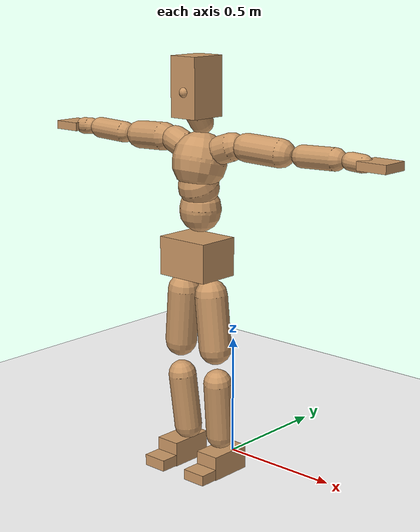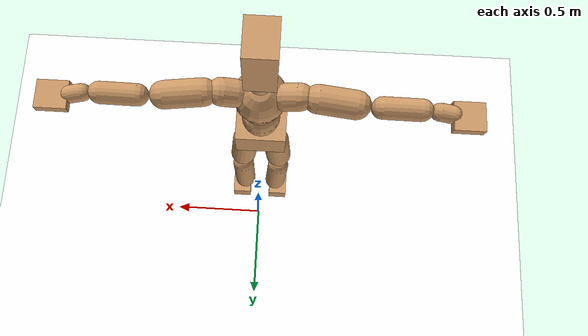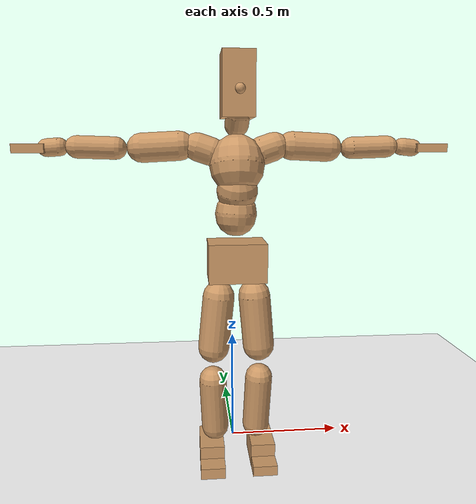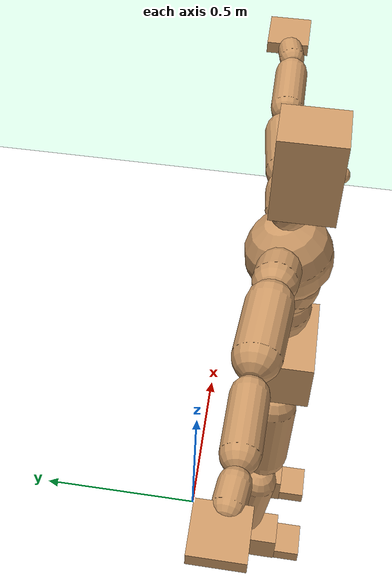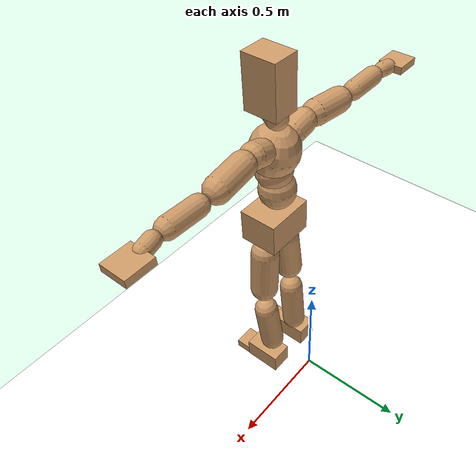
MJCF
<mujoco model="humanoid">
  <option integrator="implicitfast" />

  <visual>
    <global offwidth="1280" offheight="960" />
    <headlight active="1" ambient="0.34 0.34 0.34" diffuse="0.5 0.5 0.5" />
  </visual>

  <default>
    <joint damping="2" stiffness="2" armature="0.01" limited="true" solimplimit="0 .99 .01" />
    <geom condim="1" friction="0.7 0.005 0.0001" solimp=".99 .99 .003" solref="0.015 1" margin="0.001" rgba="0.8 0.6 .4 1" />
    <default class="smplcontact">
      <geom condim="3" friction="1. 0.005 0.0001" solref="0.015 1" solimp="0.98 0.98 0.001" priority="1" />
    </default>
    <default class="stiff_medium">
      <joint stiffness="10" />
    </default>
    <default class="stiff_medium_higher">
      <joint stiffness="50" />
    </default>
    <default class="stiff_high">
      <joint stiffness="100" />
    </default>
  </default>

  <asset>
    <texture type="skybox" builtin="gradient" rgb1="0.99 0.99 0.99" rgb2="0.608 0.828 0.892" width="100" />
    <texture builtin="flat" height="1278" mark="cross" markrgb="1 1 1" name="texgeom" random="0.01" rgb1="0.8 0.6 0.4" rgb2="0.8 0.6 0.4" type="cube" width="127" />
    <texture name="texplane" type="2d" builtin="checker" markrgb="1 1 1" rgb1="0.756 0.772 0.76" rgb2="0.6 0.6 0.6" width="100" height="100" />
    <material name="MatPlane" reflectance="0.5" texture="texplane" texrepeat="1 1" texuniform="true" />
    <material name="geom" texture="texgeom" texuniform="true" />
  </asset>

  <worldbody>
    <light name="tracking_light" pos="0 0 7" dir="0 0 -1" directional="true" cutoff="100" exponent="1" diffuse="1 1 1" specular="0.1 0.1 0.1" mode="trackcom" />
    <camera name="back" pos="0 3 2.4" xyaxes="-1 0 0 0 -1 2" mode="trackcom" />
    <camera name="side" pos="-3 0 2.4" xyaxes="0 -1 0 1 0 2" mode="trackcom" />
    <camera name="front_side" pos="-2.8 -2.8 0.8" xyaxes="0.5 -0.5 0 0.1 0.1 1" mode="trackcom" />
    <geom condim="3" name="floor" pos="0 0 0" rgba="1 1 1 1" size="100 100 .2" type="plane" material="MatPlane" />
    <body name="Pelvis" pos="-0.0018 -0.2233 0.906353" euler="90 0 0">
      <site name="Pelvis" size="0.01" />
      <freejoint name="Pelvis" />
      <geom type="box" pos="-0.0000 -0.0121 -0.0055" size="0.114917 0.077615 0.089225" quat="1.0000 0.0000 0.0000 0.0000" density="3165.830099" name="Pelvis" />
      <body name="L_Hip" pos="0.0668938 -0.0879725 -0.006545">
        <joint name="L_Hip_x" type="hinge" pos="0 0 0" axis="1 0 0" stiffness="10.822778777777778" range="-160.0 22.92" class="stiff_medium" damping="16.036984613900394" armature="0.010561464062139887"/>
        <joint name="L_Hip_y" type="hinge" pos="0 0 0" axis="0 1 0" stiffness="10.84281588888889" range="-70.0 70.0" class="stiff_medium" damping="11.339463882620159" armature="0.011858860508459997"/>
        <joint name="L_Hip_z" type="hinge" pos="0 0 0" axis="0 0 1" stiffness="10.839000333333333" range="-28.65 90.0" class="stiff_medium" damping="10.698345346330164" armature="0.010559515603792393"/>
        <geom type="capsule" density="2040.816327" fromto="0.00664125 -0.0721875 -0.00086625 0.0263725 -0.288943 -0.003465" size="0.0653438" name="L_Hip" />
        <body name="L_Knee" pos="0.0330138 -0.36113 -0.00433125">
          <joint name="L_Knee_x" type="hinge" pos="0 0 0" axis="1 0 0" range="-5.16 171.89" damping="8.688925915711556" armature="0.010770610994979769" stiffness="2.190493"/>
          <joint name="L_Knee_y" type="hinge" pos="0 0 0" axis="0 1 0" range="-4.58 6.88" damping="9.171862013455458" armature="0.012090457762766533" stiffness="2.1743141999999995"/>
          <joint name="L_Knee_z" type="hinge" pos="0 0 0" axis="0 0 1" range="-6.88 4.58" damping="8.69201281615306" armature="0.01076092437514531" stiffness="2.1940229111111114"/>
          <geom type="capsule" density="1234.567901" fromto="-0.00259875 -0.076615 -0.00837375 -0.0104913 -0.30646 -0.0336875" size="0.0574813" name="L_Knee" />
          <body name="L_Ankle" pos="-0.01309 -0.383075 -0.0420613">
            <joint name="L_Ankle_x" type="hinge" pos="0 0 0" axis="1 0 0" range="-45.84 45.84" class="stiff_medium" damping="7.045401040778326" armature="0.01194322795193258" stiffness="11.544821333333333"/>
            <joint name="L_Ankle_y" type="hinge" pos="0 0 0" axis="0 1 0" range="-74.48 22.92" class="stiff_medium" damping="3.5314574671626646" armature="0.012002666437690391" stiffness="11.544834555555557"/>
            <joint name="L_Ankle_z" type="hinge" pos="0 0 0" axis="0 0 1" range="-4.58 4.58" class="stiff_medium" damping="7.176487513387226" armature="0.012391773918807601" stiffness="11.54483911111111"/>
            <geom type="box" pos="0.0224263 -0.0230037 0.0232925" size="0.0513188 0.0493 0.0903125" quat="1.0000 0.0000 0.0000 0.0000" density="449.071558" name="L_Ankle" class="smplcontact" />
            <body name="L_Toe" pos="0.02541 -0.0537075 0.114826">
              <joint name="L_Toe_x" type="hinge" pos="0 0 0" axis="1 0 0" range="-91.67 22.92" armature="0.012617370353896817" damping="2.4138398772734995" stiffness="2.308968822222222"/>
              <joint name="L_Toe_y" type="hinge" pos="0 0 0" axis="0 1 0" range="-4.58 4.58" armature="0.012890177569865054" damping="2.439795675229626" stiffness="2.3089685555555555"/>
              <joint name="L_Toe_z" type="hinge" pos="0 0 0" axis="0 0 1" range="-4.58 4.58" armature="0.013441774880360864" damping="2.4914494246685925" stiffness="2.308966"/>
              <geom type="box" pos="-0.0028875 0.00529375 0.02387" size="0.0507875 0.02125 0.0527" quat="1.0000 0.0000 0.0000 0.0000" density="423.206892" name="L_Toe" class="smplcontact" />
            </body>
          </body>
        </body>
      </body>
      <body name="R_Hip" pos="-0.0651613 -0.0871062 -0.00413875">
        <joint name="R_Hip_x" type="hinge" pos="0 0 0" axis="1 0 0" stiffness="10.822778777777778" range="-160.0 22.92" class="stiff_medium" damping="16.036984613900394" armature="0.010561464062139887"/>
        <joint name="R_Hip_y" type="hinge" pos="0 0 0" axis="0 1 0" stiffness="10.84281588888889" range="-70.0 70.0" class="stiff_medium" damping="11.339463882620159" armature="0.011858860508459997"/>
        <joint name="R_Hip_z" type="hinge" pos="0 0 0" axis="0 0 1" stiffness="10.839000333333333" range="-90.0 28.65" class="stiff_medium" damping="10.698345346330164" armature="0.010559515603792393"/>
        <geom type="capsule" density="2040.816327" fromto="-0.00741125 -0.0736312 -0.0017325 -0.0294525 -0.294621 -0.00683375" size="0.0643875" name="R_Hip" />
        <body name="R_Knee" pos="-0.0368638 -0.368252 -0.00856625">
          <joint name="R_Knee_x" type="hinge" pos="0 0 0" axis="1 0 0" range="-5.16 171.89" damping="8.688925915711556" armature="0.010770610994979769" stiffness="2.190493"/>
          <joint name="R_Knee_y" type="hinge" pos="0 0 0" axis="0 1 0" range="-6.88 4.58" damping="9.171862013455458" armature="0.012090457762766533" stiffness="2.1743141999999995"/>
          <joint name="R_Knee_z" type="hinge" pos="0 0 0" axis="0 0 1" range="-4.58 6.88" damping="8.69201281615306" armature="0.01076092437514531" stiffness="2.1940229111111114"/>
          <geom type="capsule" density="1234.567901" fromto="0.00308 -0.0767112 -0.00818125 0.0121275 -0.306749 -0.0325325" size="0.0574813" name="R_Knee" />
          <body name="R_Ankle" pos="0.0152075 -0.38346 -0.0407137">
            <joint name="R_Ankle_x" type="hinge" pos="0 0 0" axis="1 0 0" range="-45.84 45.84" class="stiff_medium" damping="7.045401040778326" armature="0.01194322795193258" stiffness="11.544821333333333"/>
            <joint name="R_Ankle_y" type="hinge" pos="0 0 0" axis="0 1 0" range="-22.92 74.48" class="stiff_medium" damping="3.5314574671626646" armature="0.012002666437690391" stiffness="11.544834555555557"/>
            <joint name="R_Ankle_z" type="hinge" pos="0 0 0" axis="0 0 1" range="-4.58 4.58" class="stiff_medium" damping="7.176487513387226" armature="0.012391773918807601" stiffness="11.54483911111111"/>
            <geom type="box" pos="-0.020405 -0.0167475 0.02464" size="0.0513188 0.0507875 0.0919062" quat="1.0000 0.0000 0.0000 0.0000" density="434.700981" name="R_Ankle" class="smplcontact" />
            <body name="R_Toe" pos="-0.0244475 -0.0462962 0.118676">
              <joint name="R_Toe_x" type="hinge" pos="0 0 0" axis="1 0 0" range="-91.67 22.92" armature="0.012617370353896817" damping="2.4138398772734995" stiffness="2.308968822222222"/>
              <joint name="R_Toe_y" type="hinge" pos="0 0 0" axis="0 1 0" range="-4.58 4.58" armature="0.012890177569865054" damping="2.439795675229626" stiffness="2.3089685555555555"/>
              <joint name="R_Toe_z" type="hinge" pos="0 0 0" axis="0 0 1" range="-4.58 4.58" armature="0.013441774880360864" damping="2.4914494246685925" stiffness="2.308966"/>
              <geom type="box" pos="0.0040425 0.00433125 0.0218488" size="0.0508938 0.02295 0.0523812" quat="1.0000 0.0000 0.0000 0.0000" density="407.384095" name="R_Toe" class="smplcontact" />
            </body>
          </body>
        </body>
      </body>
      <body name="Torso" pos="-0.00245 0.10682 -0.026166">
        <joint name="Torso_x" type="hinge" pos="0 0 0" axis="1 0 0" range="-25.78 57.3" class="stiff_medium" damping="16.539921812116763" armature="0.010849672952030518" stiffness="11.206441777777778"/>
        <joint name="Torso_y" type="hinge" pos="0 0 0" axis="0 1 0" range="-57.3 57.3" class="stiff_high" damping="22.0560290226797" armature="0.010853546227283026" stiffness="112.05287333333334"/>
        <joint name="Torso_z" type="hinge" pos="0 0 0" axis="0 0 1" range="-34.38 34.38" class="stiff_high" damping="22.131265649063078" armature="0.010807964822379619" stiffness="113.29443777777777"/>
        <geom type="capsule" density="2040.816327" fromto="0.00245 0.059584 0.00049 0.00294 0.072814 0.000588" size="0.0826675" name="Torso" />
        <body name="Spine" pos="0.00539 0.132496 0.001078">
          <joint name="Spine_x" type="hinge" pos="0 0 0" axis="1 0 0" stiffness="11.095544666666665" range="-25.78 57.3" class="stiff_medium" damping="16.340274536501042" armature="0.010695166591620502"/>
          <joint name="Spine_y" type="hinge" pos="0 0 0" axis="0 1 0" stiffness="11.12156911111111" range="-57.3 57.3" class="stiff_high" damping="8.780734801102248" armature="0.010832175365302565"/>
          <joint name="Spine_z" type="hinge" pos="0 0 0" axis="0 0 1" stiffness="22.089081333333333" range="-34.38 34.38" class="stiff_high" damping="13.050087414097984" armature="0.010708205343729009"/>
          <geom type="capsule" density="2040.816327" fromto="0.000686 0.023324 0.011172 0.000784 0.028518 0.01372" size="0.0811625" name="Spine" />
          <body name="Chest" pos="0.00147 0.051842 0.024892">
            <joint name="Chest_x" type="hinge" pos="0 0 0" axis="1 0 0" stiffness="10.923213333333335" range="-25.78 57.3" class="stiff_medium" damping="16.162598329369192" armature="0.010628927049815124"/>
            <joint name="Chest_y" type="hinge" pos="0 0 0" axis="0 1 0" stiffness="10.974186666666668" range="-57.3 57.3" class="stiff_high" damping="8.715303950896246" armature="0.010814657224669946"/>
            <joint name="Chest_z" type="hinge" pos="0 0 0" axis="0 0 1" stiffness="21.90631333333333" range="-34.38 34.38" class="stiff_high" damping="12.981075318747045" armature="0.010683647440587123"/>
            <geom type="capsule" density="2040.816327" fromto="-0.000882 0.066836 -0.016954 -0.00098 0.081634 -0.020776" size="0.107715" name="Chest" />
            <body name="Neck" pos="-0.002744 0.209622 -0.042042">
              <joint name="Neck_x" type="hinge" pos="0 0 0" axis="1 0 0" range="-28.65 57.3" class="stiff_medium_higher" damping="10.468335705525487" armature="0.01045941146988004" stiffness="52.38633777777777"/>
              <joint name="Neck_y" type="hinge" pos="0 0 0" axis="0 1 0" range="-40.11 40.11" class="stiff_medium_higher" damping="10.561163904002386" armature="0.010663176181629166" stiffness="52.30063777777778"/>
              <joint name="Neck_z" type="hinge" pos="0 0 0" axis="0 0 1" range="-40.11 40.11" class="stiff_medium_higher" damping="10.439872675368743" armature="0.010453944737594607" stiffness="52.12909777777778"/>
              <geom type="capsule" density="1000" fromto="0.00098 0.01274 0.010094 0.004018 0.05096 0.040278" size="0.04687" name="Neck" />
              <body name="Head" pos="0.0052 0.065 0.0513">
                <joint name="Head_x" type="hinge" pos="0 0 0" axis="1 0 0" range="-28.65 57.3" class="stiff_medium_higher" damping="2.087645692705873" armature="0.010497036388818088" stiffness="51.89875000000003"/>
                <joint name="Head_y" type="hinge" pos="0 0 0" axis="0 1 0" range="-40.11 40.11" class="stiff_medium_higher" damping="2.1007103519580848" armature="0.01062883013276779" stiffness="51.89875000000003"/>
                <joint name="Head_z" type="hinge" pos="0 0 0" axis="0 0 1" range="-40.11 40.11" class="stiff_medium_higher" damping="2.0869967142519474" armature="0.010490511055898315" stiffness="51.89875000000003"/>
                <geom type="box" pos="-0.0042 0.0876 -0.0116" size="0.0613575 0.116843 0.07695" quat="1.0000 0.0000 0.0000 0.0000" density="1018.069894" name="Head" />
                <geom type="capsule" name="nose" size="0.02025 0.010125" pos="0 0.07 0.05" quat="1 0 0 0" mass="0" contype="0" conaffinity="0" />
              </body>
            </body>
            <body name="L_Thorax" pos="0.076436 0.118049 -0.033077">
              <joint name="L_Thorax_x" type="hinge" pos="0 0 0" axis="1 0 0" range="-10.89 4.58" class="stiff_medium_higher" damping="22.669639875573115" armature="0.011660537822836978" stiffness="55.09100222222223"/>
              <joint name="L_Thorax_y" type="hinge" pos="0 0 0" axis="0 1 0" range="-28.65 17.19" class="stiff_medium_higher" damping="21.74397509926072" armature="0.010753642391188242" stiffness="54.958175555555556"/>
              <joint name="L_Thorax_z" type="hinge" pos="0 0 0" axis="0 0 1" range="-31.51 40.11" class="stiff_medium_higher" damping="21.743593260669645" armature="0.0107528231850012" stiffness="54.960432222222224"/>
              <geom type="capsule" density="1000" fromto="0.017654 0.005917 -0.001746 0.070616 0.023668 -0.006887" size="0.0553563" name="L_Thorax" />
              <body name="L_Shoulder" pos="0.08827 0.029585 -0.008633">
                <joint name="L_Shoulder_x" type="hinge" pos="0 0 0" axis="1 0 0" range="-97.4 97.4" class="stiff_medium" damping="6.90582666377502" armature="0.012012087677792245" stiffness="11.028345222222223"/>
                <joint name="L_Shoulder_y" type="hinge" pos="0 0 0" axis="0 1 0" range="-108.86 80.21" class="stiff_medium" damping="6.538071358250903" armature="0.010784210355321084" stiffness="11.010536000000002"/>
                <joint name="L_Shoulder_z" type="hinge" pos="0 0 0" axis="0 0 1" range="-97.4 85.94" class="stiff_medium" damping="6.535390824975465" armature="0.010783132430105868" stiffness="11.002609222222222"/>
                <geom type="capsule" density="1000" fromto="0.050343 -0.002522 -0.005335 0.201469 -0.009894 -0.02134" size="0.0549313" name="L_Shoulder" />
                <body name="L_Elbow" pos="0.251812 -0.012416 -0.026675">
                  <joint name="L_Elbow_x" type="hinge" pos="0 0 0" axis="1 0 0" range="-17.19 4.58" damping="5.911319821500304" armature="0.012581708940565747" stiffness="2.2218731777777783"/>
                  <joint name="L_Elbow_y" type="hinge" pos="0 0 0" axis="0 1 0" range="-180.0 17.19" damping="5.510525183472739" armature="0.010933490723329681" stiffness="2.221862244444445"/>
                  <joint name="L_Elbow_z" type="hinge" pos="0 0 0" axis="0 0 1" range="-100.84 4.58" damping="5.509616572026948" armature="0.010927833635033668" stiffness="2.222279422222222"/>
                  <geom type="capsule" density="1000" fromto="0.048306 0.001746 -0.000194 0.193418 0.006984 -0.000873" size="0.0430313" name="L_Elbow" />
                  <body name="L_Wrist" pos="0.241724 0.00873 -0.001164">
                    <joint name="L_Wrist_x" type="hinge" pos="0 0 0" axis="1 0 0" range="-180.0 22.92" armature="0.012766249222278092" damping="2.418529571776013" stiffness="2.2909177111111108"/>
                    <joint name="L_Wrist_y" type="hinge" pos="0 0 0" axis="0 1 0" range="-17.19 17.19" armature="0.011456274628706716" damping="2.2880136925517034" stiffness="2.2847770444444446"/>
                    <joint name="L_Wrist_z" type="hinge" pos="0 0 0" axis="0 0 1" range="-22.92 22.92" armature="0.011382761420234852" damping="2.2817399092286803" stiffness="2.2869393555555555"/>
                    <geom type="capsule" density="1000" fromto="0.016296 -0.001552 -0.00291 0.065184 -0.006305 -0.01164" size="0.0337875" name="L_Wrist" class="smplcontact" />
                    <body name="L_Hand" pos="0.08148 -0.007954 -0.014453">
                      <joint name="L_Hand_x" type="hinge" pos="0 0 0" axis="1 0 0" range="-17.19 17.19" armature="0.013442566875423466" damping="2.5012112478278055" stiffness="2.326958"/>
                      <joint name="L_Hand_y" type="hinge" pos="0 0 0" axis="0 1 0" range="-51.57 51.57" armature="0.012352679186883946" damping="2.3976724403201155" stiffness="2.326958"/>
                      <joint name="L_Hand_z" type="hinge" pos="0 0 0" axis="0 0 1" range="-91.67 91.67" armature="0.01206215463184281" damping="2.3693090645926156" stiffness="2.326958"/>
                      <geom type="box" pos="0.047821 0.00097 -0.005626" size="0.0621563 0.0167875 0.0571625" quat="1.0000 0.0000 0.0000 0.0000" density="400.552564" name="L_Hand" class="smplcontact" />
                    </body>
                  </body>
                </body>
              </body>
            </body>
            <body name="R_Thorax" pos="-0.079346 0.115236 -0.037442">
              <joint name="R_Thorax_x" type="hinge" pos="0 0 0" axis="1 0 0" range="-10.89 4.58" class="stiff_medium_higher" damping="22.669639875573115" armature="0.011660537822836978" stiffness="55.09100222222223"/>
              <joint name="R_Thorax_y" type="hinge" pos="0 0 0" axis="0 1 0" range="-17.19 28.65" class="stiff_medium_higher" damping="21.74397509926072" armature="0.010753642391188242" stiffness="54.958175555555556"/>
              <joint name="R_Thorax_z" type="hinge" pos="0 0 0" axis="0 0 1" range="-40.11 31.51" class="stiff_medium_higher" damping="21.743593260669645" armature="0.0107528231850012" stiffness="54.960432222222224"/>
              <geom type="capsule" density="1000" fromto="-0.018624 0.006305 -0.001746 -0.074496 0.02522 -0.007081" size="0.0542938" name="R_Thorax" />
              <body name="R_Shoulder" pos="-0.09312 0.031622 -0.008827">
                <joint name="R_Shoulder_x" type="hinge" pos="0 0 0" axis="1 0 0" range="-97.4 97.4" class="stiff_medium" damping="6.90582666377502" armature="0.012012087677792245" stiffness="11.028345222222223"/>
                <joint name="R_Shoulder_y" type="hinge" pos="0 0 0" axis="0 1 0" range="-80.21 108.86" class="stiff_medium" damping="6.538071358250903" armature="0.010784210355321084" stiffness="11.010536000000002"/>
                <joint name="R_Shoulder_z" type="hinge" pos="0 0 0" axis="0 0 1" range="-85.94 97.4" class="stiff_medium" damping="6.535390824975465" armature="0.010783132430105868" stiffness="11.002609222222222"/>
                <geom type="capsule" density="1000" fromto="-0.049179 -0.002619 -0.004171 -0.19691 -0.010379 -0.016587" size="0.0564188" name="R_Shoulder" />
                <body name="R_Elbow" pos="-0.246089 -0.012901 -0.020758">
                  <joint name="R_Elbow_x" type="hinge" pos="0 0 0" axis="1 0 0" range="-17.19 4.58" damping="5.911319821500304" armature="0.012581708940565747" stiffness="2.2218731777777783"/>
                  <joint name="R_Elbow_y" type="hinge" pos="0 0 0" axis="0 1 0" range="-17.19 180.0" damping="5.510525183472739" armature="0.010933490723329681" stiffness="2.221862244444445"/>
                  <joint name="R_Elbow_z" type="hinge" pos="0 0 0" axis="0 0 1" range="-4.58 100.84" damping="5.509616572026948" armature="0.010927833635033668" stiffness="2.222279422222222"/>
                  <geom type="capsule" density="1000" fromto="-0.049567 0.001552 -0.001067 -0.198074 0.006014 -0.004268" size="0.04335" name="R_Elbow" />
                  <body name="R_Wrist" pos="-0.247641 0.007566 -0.005432">
                    <joint name="R_Wrist_x" type="hinge" pos="0 0 0" axis="1 0 0" range="-180.0 22.92" armature="0.012766249222278092" damping="2.418529571776013" stiffness="2.2909177111111108"/>
                    <joint name="R_Wrist_y" type="hinge" pos="0 0 0" axis="0 1 0" range="-17.19 17.19" armature="0.011456274628706716" damping="2.2880136925517034" stiffness="2.2847770444444446"/>
                    <joint name="R_Wrist_z" type="hinge" pos="0 0 0" axis="0 0 1" range="-22.92 22.92" armature="0.011382761420234852" damping="2.2817399092286803" stiffness="2.2869393555555555"/>
                    <geom type="capsule" density="1000" fromto="-0.016393 -0.001164 -0.002037 -0.065669 -0.004753 -0.008051" size="0.0346375" name="R_Wrist" class="smplcontact" />
                    <body name="R_Hand" pos="-0.082062 -0.005917 -0.009991">
                      <joint name="R_Hand_x" type="hinge" pos="0 0 0" axis="1 0 0" range="-17.19 17.19" armature="0.013442566875423466" damping="2.5012112478278055" stiffness="2.326958"/>
                      <joint name="R_Hand_y" type="hinge" pos="0 0 0" axis="0 1 0" range="-51.57 51.57" armature="0.012352679186883946" damping="2.3976724403201155" stiffness="2.326958"/>
                      <joint name="R_Hand_z" type="hinge" pos="0 0 0" axis="0 0 1" range="-91.67 91.67" armature="0.01206215463184281" damping="2.3693090645926156" stiffness="2.326958"/>
                      <geom type="box" pos="-0.044814 -0.000873 -0.007663" size="0.0604562 0.017425 0.0580125" quat="1.0000 0.0000 0.0000 0.0000" density="403.679611" name="R_Hand" class="smplcontact" />
                    </body>
                  </body>
                </body>
              </body>
            </body>
          </body>
        </body>
      </body>
    </body>
  </worldbody>
  <actuator>
    <general name="L_Hip_x" joint="L_Hip_x" biastype="affine" gainprm="310.970971993003" biasprm="-233.04122480210393 -194.81001799999999 -2.1382646151867193" ctrllimited="true" ctrlrange="-1 1" forcerange="-389.62003599999997 389.62003599999997" />
    <general name="L_Hip_y" joint="L_Hip_y" biastype="affine" gainprm="238.44597518532012" biasprm="0.0 -195.17068600000002 -2.2678927765240315" ctrllimited="true" ctrlrange="-1 1" forcerange="-390.34137200000004 390.34137200000004" />
    <general name="L_Hip_z" joint="L_Hip_z" biastype="affine" gainprm="202.01185155893054" biasprm="104.45366281618531 -195.102006 -2.139669069266033" ctrllimited="true" ctrlrange="-1 1" forcerange="-390.204012 390.204012" />
    <general name="L_Knee_x" joint="L_Knee_x" biastype="affine" gainprm="304.5984451658459" biasprm="286.843822437173 -197.14437 -2.172231478927889" ctrllimited="true" ctrlrange="-1 1" forcerange="-394.28874 394.28874" />
    <general name="L_Knee_y" joint="L_Knee_y" biastype="affine" gainprm="19.570269267110245" biasprm="3.927715472456681 -195.68827799999997 -2.2929655033638645" ctrllimited="true" ctrlrange="-1 1" forcerange="-391.37655599999994 391.37655599999994" />
    <general name="L_Knee_z" joint="L_Knee_z" biastype="affine" gainprm="19.74766073305024" biasprm="-3.9633175991287564 -197.46206200000003 -2.173003204038265" ctrllimited="true" ctrlrange="-1 1" forcerange="-394.92412400000006 394.92412400000006" />
    <general name="L_Ankle_x" joint="L_Ankle_x" biastype="affine" gainprm="83.12883653485301" biasprm="0.0 -103.903392 -2.348467013592775" ctrllimited="true" ctrlrange="-1 1" forcerange="-207.806784 207.806784" />
    <general name="L_Ankle_y" joint="L_Ankle_y" biastype="affine" gainprm="88.31542268387552" biasprm="-46.75095681294273 -103.90351100000001 -2.354304978108443" ctrllimited="true" ctrlrange="-1 1" forcerange="-207.80702200000002 207.80702200000002" />
    <general name="L_Ankle_z" joint="L_Ankle_z" biastype="affine" gainprm="8.305642618080496" biasprm="0.0 -103.90355199999999 -2.3921625044624086" ctrllimited="true" ctrlrange="-1 1" forcerange="-207.80710399999998 207.80710399999998" />
    <general name="L_Toe_x" joint="L_Toe_x" biastype="affine" gainprm="83.12174670744419" biasprm="-49.87014648867081 -83.1228776 -0.9655359509093998" ctrllimited="true" ctrlrange="-1 1" forcerange="-166.2457552 166.2457552" />
    <general name="L_Toe_y" joint="L_Toe_y" biastype="affine" gainprm="6.644516204776903" biasprm="0.0 -83.122868 -0.9759182700918505" ctrllimited="true" ctrlrange="-1 1" forcerange="-166.245736 166.245736" />
    <general name="L_Toe_z" joint="L_Toe_z" biastype="affine" gainprm="6.644508850657567" biasprm="0.0 -83.12277599999999 -0.996579769867437" ctrllimited="true" ctrlrange="-1 1" forcerange="-166.24555199999998 166.24555199999998" />
    <general name="R_Hip_x" joint="R_Hip_x" biastype="affine" gainprm="310.970971993003" biasprm="-233.04122480210393 -194.81001799999999 -2.1382646151867193" ctrllimited="true" ctrlrange="-1 1" forcerange="-389.62003599999997 389.62003599999997" />
    <general name="R_Hip_y" joint="R_Hip_y" biastype="affine" gainprm="238.44597518532012" biasprm="0.0 -195.17068600000002 -2.2678927765240315" ctrllimited="true" ctrlrange="-1 1" forcerange="-390.34137200000004 390.34137200000004" />
    <general name="R_Hip_z" joint="R_Hip_z" biastype="affine" gainprm="202.01185155893054" biasprm="-104.45366281618531 -195.102006 -2.139669069266033" ctrllimited="true" ctrlrange="-1 1" forcerange="-390.204012 390.204012" />
    <general name="R_Knee_x" joint="R_Knee_x" biastype="affine" gainprm="304.5984451658459" biasprm="286.843822437173 -197.14437 -2.172231478927889" ctrllimited="true" ctrlrange="-1 1" forcerange="-394.28874 394.28874" />
    <general name="R_Knee_y" joint="R_Knee_y" biastype="affine" gainprm="19.570269267110245" biasprm="-3.927715472456681 -195.68827799999997 -2.2929655033638645" ctrllimited="true" ctrlrange="-1 1" forcerange="-391.37655599999994 391.37655599999994" />
    <general name="R_Knee_z" joint="R_Knee_z" biastype="affine" gainprm="19.74766073305024" biasprm="3.9633175991287564 -197.46206200000003 -2.173003204038265" ctrllimited="true" ctrlrange="-1 1" forcerange="-394.92412400000006 394.92412400000006" />
    <general name="R_Ankle_x" joint="R_Ankle_x" biastype="affine" gainprm="83.12883653485301" biasprm="0.0 -103.903392 -2.348467013592775" ctrllimited="true" ctrlrange="-1 1" forcerange="-207.806784 207.806784" />
    <general name="R_Ankle_y" joint="R_Ankle_y" biastype="affine" gainprm="88.31542268387552" biasprm="46.75095681294273 -103.90351100000001 -2.354304978108443" ctrllimited="true" ctrlrange="-1 1" forcerange="-207.80702200000002 207.80702200000002" />
    <general name="R_Ankle_z" joint="R_Ankle_z" biastype="affine" gainprm="8.305642618080496" biasprm="0.0 -103.90355199999999 -2.3921625044624086" ctrllimited="true" ctrlrange="-1 1" forcerange="-207.80710399999998 207.80710399999998" />
    <general name="R_Toe_x" joint="R_Toe_x" biastype="affine" gainprm="83.12174670744419" biasprm="-49.87014648867081 -83.1228776 -0.9655359509093998" ctrllimited="true" ctrlrange="-1 1" forcerange="-166.2457552 166.2457552" />
    <general name="R_Toe_y" joint="R_Toe_y" biastype="affine" gainprm="6.644516204776903" biasprm="0.0 -83.122868 -0.9759182700918505" ctrllimited="true" ctrlrange="-1 1" forcerange="-166.245736 166.245736" />
    <general name="R_Toe_z" joint="R_Toe_z" biastype="affine" gainprm="6.644508850657567" biasprm="0.0 -83.12277599999999 -0.996579769867437" ctrllimited="true" ctrlrange="-1 1" forcerange="-166.24555199999998 166.24555199999998" />
    <general name="Torso_x" joint="Torso_x" biastype="affine" gainprm="194.99471496364492" biasprm="73.9796992736409 -268.9546026666667 -4.41064581656447" ctrllimited="true" ctrlrange="-1 1" forcerange="-403.43190400000003 403.43190400000003" />
    <general name="Torso_y" joint="Torso_y" biastype="affine" gainprm="268.9467055297075" biasprm="0.0 -268.926896 -4.41120580453594" ctrllimited="true" ctrlrange="-1 1" forcerange="-403.390344 403.390344" />
    <general name="Torso_z" joint="Torso_z" biastype="affine" gainprm="163.1560078135518" biasprm="0.0 -271.9066506666666 -4.426253129812616" ctrllimited="true" ctrlrange="-1 1" forcerange="-407.85997599999996 407.85997599999996" />
    <general name="Spine_x" joint="Spine_x" biastype="affine" gainprm="193.06507922375434" biasprm="73.24760829480904 -266.293072 -4.357406543066944" ctrllimited="true" ctrlrange="-1 1" forcerange="-399.43960799999996 399.43960799999996" />
    <general name="Spine_y" joint="Spine_y" biastype="affine" gainprm="266.9373201931538" biasprm="0.0 -266.9176586666667 -4.390367400551124" ctrllimited="true" ctrlrange="-1 1" forcerange="-400.376488 400.376488" />
    <general name="Spine_z" joint="Spine_z" biastype="affine" gainprm="159.05310080996836" biasprm="0.0 -265.068976 -4.350029138032661" ctrllimited="true" ctrlrange="-1 1" forcerange="-397.60346400000003 397.60346400000003" />
    <general name="Chest_x" joint="Chest_x" biastype="affine" gainprm="190.06647361021575" biasprm="72.10995724836302 -262.15712 -4.310026221165118" ctrllimited="true" ctrlrange="-1 1" forcerange="-393.23568000000006 393.23568000000006" />
    <general name="Chest_y" joint="Chest_y" biastype="affine" gainprm="263.3998809729802" biasprm="0.0 -263.38048000000003 -4.357651975448123" ctrllimited="true" ctrlrange="-1 1" forcerange="-395.07072000000005 395.07072000000005" />
    <general name="Chest_z" joint="Chest_z" biastype="affine" gainprm="157.73707427676123" biasprm="0.0 -262.87575999999996 -4.327025106249015" ctrllimited="true" ctrlrange="-1 1" forcerange="-394.31363999999996 394.31363999999996" />
    <general name="Neck_x" joint="Neck_x" biastype="affine" gainprm="28.29070617932498" biasprm="9.430235393108326 -37.71816319999999 -0.837466856442039" ctrllimited="true" ctrlrange="-1 1" forcerange="-75.43632639999998 75.43632639999998" />
    <general name="Neck_y" joint="Neck_y" biastype="affine" gainprm="26.361463119061515" biasprm="0.0 -37.6564592 -0.8448931123201909" ctrllimited="true" ctrlrange="-1 1" forcerange="-75.3129184 75.3129184" />
    <general name="Neck_z" joint="Neck_z" biastype="affine" gainprm="26.27500059058036" biasprm="0.0 -37.5329504 -0.8351898140294995" ctrllimited="true" ctrlrange="-1 1" forcerange="-75.0659008 75.0659008" />
    <general name="Head_x" joint="Head_x" biastype="affine" gainprm="18.68492625631454" biasprm="6.228308752104846 -24.911400000000015 -0.8350582770823491" ctrllimited="true" ctrlrange="-1 1" forcerange="-49.82280000000003 49.82280000000003" />
    <general name="Head_y" joint="Head_y" biastype="affine" gainprm="17.43926450589357" biasprm="0.0 -24.911400000000015 -0.840284140783234" ctrllimited="true" ctrlrange="-1 1" forcerange="-49.82280000000003 49.82280000000003" />
    <general name="Head_z" joint="Head_z" biastype="affine" gainprm="17.43926450589357" biasprm="0.0 -24.911400000000015 -0.834798685700779" ctrllimited="true" ctrlrange="-1 1" forcerange="-49.82280000000003 49.82280000000003" />
    <general name="L_Thorax_x" joint="L_Thorax_x" biastype="affine" gainprm="17.84964571465196" biasprm="-7.2806247226537755 -132.21840533333335 -1.8135711900458493" ctrllimited="true" ctrlrange="-1 1" forcerange="-264.4368106666667 264.4368106666667" />
    <general name="L_Thorax_y" joint="L_Thorax_y" biastype="affine" gainprm="52.76373489725762" biasprm="-13.190933724314405 -131.89962133333333 -1.7395180079408576" ctrllimited="true" ctrlrange="-1 1" forcerange="-263.79924266666666 263.79924266666666" />
    <general name="L_Thorax_z" joint="L_Thorax_z" biastype="affine" gainprm="82.44096558330527" biasprm="9.899361966160642 -131.90503733333333 -1.7394874608535718" ctrllimited="true" ctrlrange="-1 1" forcerange="-263.81007466666665 263.81007466666665" />
    <general name="L_Shoulder_x" joint="L_Shoulder_x" biastype="affine" gainprm="89.98868681271843" biasprm="0.0 -52.93605706666666 -1.841553777006672" ctrllimited="true" ctrlrange="-1 1" forcerange="-105.87211413333333 105.87211413333333" />
    <general name="L_Shoulder_y" joint="L_Shoulder_y" biastype="affine" gainprm="87.20064448215098" biasprm="-13.213616461700033 -52.85057280000001 -1.7434856955335745" ctrllimited="true" ctrlrange="-1 1" forcerange="-105.70114560000002 105.70114560000002" />
    <general name="L_Shoulder_z" joint="L_Shoulder_z" biastype="affine" gainprm="84.4970456928667" biasprm="-5.2816414510758944 -52.812524266666664 -1.7427708866601241" ctrllimited="true" ctrlrange="-1 1" forcerange="-105.62504853333333 105.62504853333333" />
    <general name="L_Elbow_x" joint="L_Elbow_x" biastype="affine" gainprm="15.195939925124886" biasprm="-8.802057990621263 -79.98743440000001 -0.9458111714400487" ctrllimited="true" ctrlrange="-1 1" forcerange="-159.97486880000002 159.97486880000002" />
    <general name="L_Elbow_y" joint="L_Elbow_y" biastype="affine" gainprm="137.64228979335763" biasprm="-113.64440996630945 -79.98704080000002 -0.8816840293556383" ctrllimited="true" ctrlrange="-1 1" forcerange="-159.97408160000003 159.97408160000003" />
    <general name="L_Elbow_z" joint="L_Elbow_z" biastype="affine" gainprm="73.59893828600681" biasprm="-67.20388730232419 -80.00205919999999 -0.8815386515243117" ctrllimited="true" ctrlrange="-1 1" forcerange="-160.00411839999998 160.00411839999998" />
    <general name="L_Wrist_x" joint="L_Wrist_x" biastype="affine" gainprm="24.340694509576696" biasprm="-18.842086997655763 -13.745506266666665 -0.9674118287104053" ctrllimited="true" ctrlrange="-1 1" forcerange="-27.49101253333333 27.49101253333333" />
    <general name="L_Wrist_y" joint="L_Wrist_y" biastype="affine" gainprm="4.112901619746595" biasprm="0.0 -13.708662266666668 -0.9152054770206814" ctrllimited="true" ctrlrange="-1 1" forcerange="-27.417324533333336 27.417324533333336" />
    <general name="L_Wrist_z" joint="L_Wrist_z" biastype="affine" gainprm="5.489058755264694" biasprm="0.0 -13.721636133333334 -0.9126959636914722" ctrllimited="true" ctrlrange="-1 1" forcerange="-27.443272266666668 27.443272266666668" />
    <general name="L_Hand_x" joint="L_Hand_x" biastype="affine" gainprm="4.188832932540875" biasprm="0.0 -13.961748 -1.0004844991311221" ctrllimited="true" ctrlrange="-1 1" forcerange="-27.923496 27.923496" />
    <general name="L_Hand_y" joint="L_Hand_y" biastype="affine" gainprm="12.566498797622623" biasprm="0.0 -13.961748 -0.9590689761280462" ctrllimited="true" ctrlrange="-1 1" forcerange="-27.923496 27.923496" />
    <general name="L_Hand_z" joint="L_Hand_z" biastype="affine" gainprm="22.338005522165325" biasprm="0.0 -13.961748 -0.9477236258370463" ctrllimited="true" ctrlrange="-1 1" forcerange="-27.923496 27.923496" />
    <general name="R_Thorax_x" joint="R_Thorax_x" biastype="affine" gainprm="17.84964571465196" biasprm="-7.2806247226537755 -132.21840533333335 -1.8135711900458493" ctrllimited="true" ctrlrange="-1 1" forcerange="-264.4368106666667 264.4368106666667" />
    <general name="R_Thorax_y" joint="R_Thorax_y" biastype="affine" gainprm="52.76373489725762" biasprm="13.190933724314396 -131.89962133333333 -1.7395180079408576" ctrllimited="true" ctrlrange="-1 1" forcerange="-263.79924266666666 263.79924266666666" />
    <general name="R_Thorax_z" joint="R_Thorax_z" biastype="affine" gainprm="82.44096558330527" biasprm="-9.899361966160642 -131.90503733333333 -1.7394874608535718" ctrllimited="true" ctrlrange="-1 1" forcerange="-263.81007466666665 263.81007466666665" />
    <general name="R_Shoulder_x" joint="R_Shoulder_x" biastype="affine" gainprm="89.98868681271843" biasprm="0.0 -52.93605706666666 -1.841553777006672" ctrllimited="true" ctrlrange="-1 1" forcerange="-105.87211413333333 105.87211413333333" />
    <general name="R_Shoulder_y" joint="R_Shoulder_y" biastype="affine" gainprm="87.20064448215098" biasprm="13.213616461700033 -52.85057280000001 -1.7434856955335745" ctrllimited="true" ctrlrange="-1 1" forcerange="-105.70114560000002 105.70114560000002" />
    <general name="R_Shoulder_z" joint="R_Shoulder_z" biastype="affine" gainprm="84.4970456928667" biasprm="5.281641451075883 -52.812524266666664 -1.7427708866601241" ctrllimited="true" ctrlrange="-1 1" forcerange="-105.62504853333333 105.62504853333333" />
    <general name="R_Elbow_x" joint="R_Elbow_x" biastype="affine" gainprm="15.195939925124886" biasprm="-8.802057990621263 -79.98743440000001 -0.9458111714400487" ctrllimited="true" ctrlrange="-1 1" forcerange="-159.97486880000002 159.97486880000002" />
    <general name="R_Elbow_y" joint="R_Elbow_y" biastype="affine" gainprm="137.64228979335763" biasprm="113.64440996630945 -79.98704080000002 -0.8816840293556383" ctrllimited="true" ctrlrange="-1 1" forcerange="-159.97408160000003 159.97408160000003" />
    <general name="R_Elbow_z" joint="R_Elbow_z" biastype="affine" gainprm="73.59893828600681" biasprm="67.20388730232419 -80.00205919999999 -0.8815386515243117" ctrllimited="true" ctrlrange="-1 1" forcerange="-160.00411839999998 160.00411839999998" />
    <general name="R_Wrist_x" joint="R_Wrist_x" biastype="affine" gainprm="24.340694509576696" biasprm="-18.842086997655763 -13.745506266666665 -0.9674118287104053" ctrllimited="true" ctrlrange="-1 1" forcerange="-27.49101253333333 27.49101253333333" />
    <general name="R_Wrist_y" joint="R_Wrist_y" biastype="affine" gainprm="4.112901619746595" biasprm="0.0 -13.708662266666668 -0.9152054770206814" ctrllimited="true" ctrlrange="-1 1" forcerange="-27.417324533333336 27.417324533333336" />
    <general name="R_Wrist_z" joint="R_Wrist_z" biastype="affine" gainprm="5.489058755264694" biasprm="0.0 -13.721636133333334 -0.9126959636914722" ctrllimited="true" ctrlrange="-1 1" forcerange="-27.443272266666668 27.443272266666668" />
    <general name="R_Hand_x" joint="R_Hand_x" biastype="affine" gainprm="4.188832932540875" biasprm="0.0 -13.961748 -1.0004844991311221" ctrllimited="true" ctrlrange="-1 1" forcerange="-27.923496 27.923496" />
    <general name="R_Hand_y" joint="R_Hand_y" biastype="affine" gainprm="12.566498797622623" biasprm="0.0 -13.961748 -0.9590689761280462" ctrllimited="true" ctrlrange="-1 1" forcerange="-27.923496 27.923496" />
    <general name="R_Hand_z" joint="R_Hand_z" biastype="affine" gainprm="22.338005522165325" biasprm="0.0 -13.961748 -0.9477236258370463" ctrllimited="true" ctrlrange="-1 1" forcerange="-27.923496 27.923496" />
  </actuator>
  <contact>
    <exclude body1="Torso" body2="Chest" />
    <exclude body1="Head" body2="Chest" />
    <exclude body1="R_Knee" body2="R_Toe" />
    <exclude body1="R_Knee" body2="L_Ankle" />
    <exclude body1="R_Knee" body2="L_Toe" />
    <exclude body1="L_Knee" body2="L_Toe" />
    <exclude body1="L_Knee" body2="R_Ankle" />
    <exclude body1="L_Knee" body2="R_Toe" />
    <exclude body1="L_Shoulder" body2="Chest" />
    <exclude body1="R_Shoulder" body2="Chest" />
  </contact>
  <sensor>
    <framelinvel name="sensor_Pelvis_framelinvel" objtype="xbody" objname="Pelvis" />
    <framelinvel name="sensor_L_Hip_framelinvel" objtype="xbody" objname="L_Hip" />
    <framelinvel name="sensor_L_Knee_framelinvel" objtype="xbody" objname="L_Knee" />
    <framelinvel name="sensor_L_Ankle_framelinvel" objtype="xbody" objname="L_Ankle" />
    <framelinvel name="sensor_L_Toe_framelinvel" objtype="xbody" objname="L_Toe" />
    <framelinvel name="sensor_R_Hip_framelinvel" objtype="xbody" objname="R_Hip" />
    <framelinvel name="sensor_R_Knee_framelinvel" objtype="xbody" objname="R_Knee" />
    <framelinvel name="sensor_R_Ankle_framelinvel" objtype="xbody" objname="R_Ankle" />
    <framelinvel name="sensor_R_Toe_framelinvel" objtype="xbody" objname="R_Toe" />
    <framelinvel name="sensor_Torso_framelinvel" objtype="xbody" objname="Torso" />
    <framelinvel name="sensor_Spine_framelinvel" objtype="xbody" objname="Spine" />
    <framelinvel name="sensor_Chest_framelinvel" objtype="xbody" objname="Chest" />
    <framelinvel name="sensor_Neck_framelinvel" objtype="xbody" objname="Neck" />
    <framelinvel name="sensor_Head_framelinvel" objtype="xbody" objname="Head" />
    <framelinvel name="sensor_L_Thorax_framelinvel" objtype="xbody" objname="L_Thorax" />
    <framelinvel name="sensor_L_Shoulder_framelinvel" objtype="xbody" objname="L_Shoulder" />
    <framelinvel name="sensor_L_Elbow_framelinvel" objtype="xbody" objname="L_Elbow" />
    <framelinvel name="sensor_L_Wrist_framelinvel" objtype="xbody" objname="L_Wrist" />
    <framelinvel name="sensor_L_Hand_framelinvel" objtype="xbody" objname="L_Hand" />
    <framelinvel name="sensor_R_Thorax_framelinvel" objtype="xbody" objname="R_Thorax" />
    <framelinvel name="sensor_R_Shoulder_framelinvel" objtype="xbody" objname="R_Shoulder" />
    <framelinvel name="sensor_R_Elbow_framelinvel" objtype="xbody" objname="R_Elbow" />
    <framelinvel name="sensor_R_Wrist_framelinvel" objtype="xbody" objname="R_Wrist" />
    <framelinvel name="sensor_R_Hand_framelinvel" objtype="xbody" objname="R_Hand" />
    <frameangvel name="sensor_Pelvis_frameangvel" objtype="xbody" objname="Pelvis" />
    <frameangvel name="sensor_L_Hip_frameangvel" objtype="xbody" objname="L_Hip" />
    <frameangvel name="sensor_L_Knee_frameangvel" objtype="xbody" objname="L_Knee" />
    <frameangvel name="sensor_L_Ankle_frameangvel" objtype="xbody" objname="L_Ankle" />
    <frameangvel name="sensor_L_Toe_frameangvel" objtype="xbody" objname="L_Toe" />
    <frameangvel name="sensor_R_Hip_frameangvel" objtype="xbody" objname="R_Hip" />
    <frameangvel name="sensor_R_Knee_frameangvel" objtype="xbody" objname="R_Knee" />
    <frameangvel name="sensor_R_Ankle_frameangvel" objtype="xbody" objname="R_Ankle" />
    <frameangvel name="sensor_R_Toe_frameangvel" objtype="xbody" objname="R_Toe" />
    <frameangvel name="sensor_Torso_frameangvel" objtype="xbody" objname="Torso" />
    <frameangvel name="sensor_Spine_frameangvel" objtype="xbody" objname="Spine" />
    <frameangvel name="sensor_Chest_frameangvel" objtype="xbody" objname="Chest" />
    <frameangvel name="sensor_Neck_frameangvel" objtype="xbody" objname="Neck" />
    <frameangvel name="sensor_Head_frameangvel" objtype="xbody" objname="Head" />
    <frameangvel name="sensor_L_Thorax_frameangvel" objtype="xbody" objname="L_Thorax" />
    <frameangvel name="sensor_L_Shoulder_frameangvel" objtype="xbody" objname="L_Shoulder" />
    <frameangvel name="sensor_L_Elbow_frameangvel" objtype="xbody" objname="L_Elbow" />
    <frameangvel name="sensor_L_Wrist_frameangvel" objtype="xbody" objname="L_Wrist" />
    <frameangvel name="sensor_L_Hand_frameangvel" objtype="xbody" objname="L_Hand" />
    <frameangvel name="sensor_R_Thorax_frameangvel" objtype="xbody" objname="R_Thorax" />
    <frameangvel name="sensor_R_Shoulder_frameangvel" objtype="xbody" objname="R_Shoulder" />
    <frameangvel name="sensor_R_Elbow_frameangvel" objtype="xbody" objname="R_Elbow" />
    <frameangvel name="sensor_R_Wrist_frameangvel" objtype="xbody" objname="R_Wrist" />
    <frameangvel name="sensor_R_Hand_frameangvel" objtype="xbody" objname="R_Hand" />
    <subtreelinvel name="Chest_subtreelinvel" body="Chest" />
    <gyro name="Pelvis_gyro" site="Pelvis" />
  </sensor>
</mujoco>
